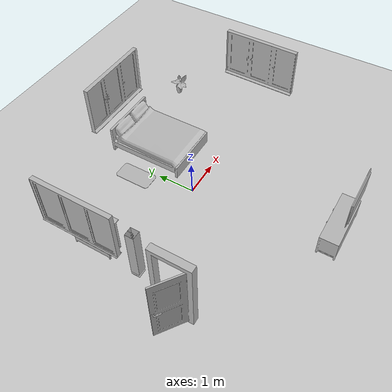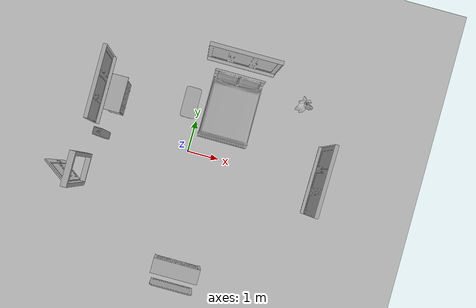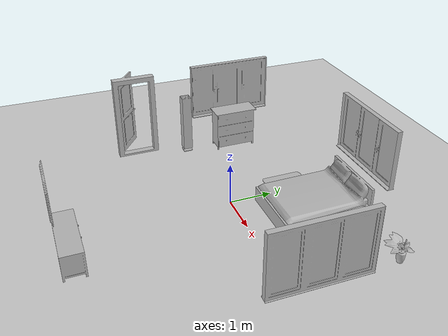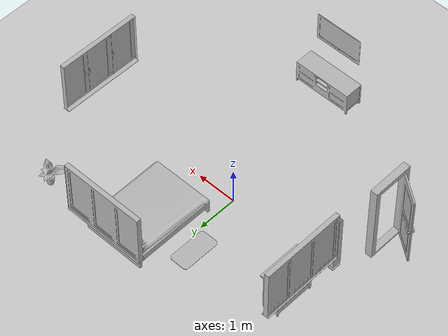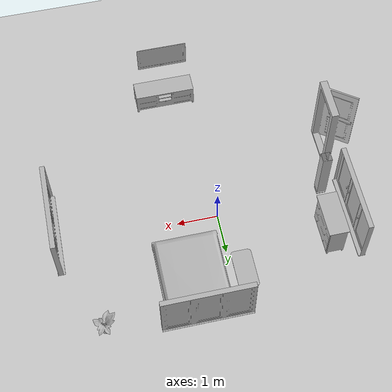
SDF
<sdf version="1.4">
 <world name="default">
  <light name="sun" type="directional">
   <pose>0 0 10 0 -0 0</pose>
   <diffuse>0.8 0.8 0.8 1</diffuse>
   <specular>0.2 0.2 0.2 1</specular>
   <attenuation>
    <range>1000</range>
    <constant>0.9</constant>
    <linear>0.01</linear>
    <quadratic>0.001</quadratic>
   </attenuation>
   <direction>-0.5 0.1 -0.9</direction>
  </light>
  <model name="ground_plane">
   <static>1</static>
   <link name="link">
    <collision name="collision">
     <geometry><plane><normal>0 0 1</normal><size>100 100</size></plane></geometry>
     <surface><friction><ode><mu>100</mu><mu2>50</mu2></ode></friction></surface>
    </collision>
    <visual name="visual">
     <cast_shadows>0</cast_shadows>
     <geometry><plane><normal>0 0 1</normal><size>100 100</size></plane></geometry>
     <material>
      <script><uri>file://media/materials/scripts/gazebo.material</uri><name>Gazebo/Grey</name></script>
     </material>
    </visual>
    <velocity_decay><linear>0</linear><angular>0</angular></velocity_decay>
   </link>
  </model>
  <physics type="ode">
   <max_step_size>0.001</max_step_size>
   <real_time_factor>1</real_time_factor>
   <real_time_update_rate>1000</real_time_update_rate>
   <gravity>0 0 -9.8</gravity>
  </physics>
  <scene><ambient>0.4 0.4 0.4 1</ambient><background>0.7 0.7 0.7 1</background><shadows>1</shadows></scene>
  <spherical_coordinates>
   <surface_model>EARTH_WGS84</surface_model>
   <latitude_deg>0</latitude_deg>
   <longitude_deg>0</longitude_deg>
   <elevation>0</elevation>
   <heading_deg>0</heading_deg>
  </spherical_coordinates>
  <model name="214_0">
   <pose>-3.04947 -1.42674 0 0 -0 0.001853</pose>
   <static>1</static>
   <link name="link">
    <collision name="collision"><geometry><box><size>0.829998 1.03985 2</size></box></geometry></collision>
    <visual name="visual"><geometry><mesh><uri>model://214/214.dae</uri></mesh></geometry></visual>
    <velocity_decay><linear>0</linear><angular>0</angular></velocity_decay>
   </link>
  </model>
  <model name="210_0">
   <pose>-2.93542 1.10342 0.83 0 -0 0.001853</pose>
   <static>1</static>
   <link name="link">
    <collision name="collision"><geometry><box><size>0.175 2.1 2</size></box></geometry></collision>
    <visual name="visual"><geometry><mesh><uri>model://210/210.dae</uri></mesh></geometry></visual>
    <velocity_decay><linear>0</linear><angular>0</angular></velocity_decay>
   </link>
  </model>
  <model name="210_1">
   <pose>0.874067 2.91995 0.83 0 0 -1.57078</pose>
   <static>1</static>
   <link name="link">
    <collision name="collision"><geometry><box><size>0.175 2.1 2</size></box></geometry></collision>
    <visual name="visual"><geometry><mesh><uri>model://210/210.dae</uri></mesh></geometry></visual>
    <velocity_decay><linear>0</linear><angular>0</angular></velocity_decay>
   </link>
  </model>
  <model name="210_2">
   <pose>3.90666 0.103814 0.83 0 -0 3.1273</pose>
   <static>1</static>
   <link name="link">
    <collision name="collision"><geometry><box><size>0.175 2.1 2</size></box></geometry></collision>
    <visual name="visual"><geometry><mesh><uri>model://210/210.dae</uri></mesh></geometry></visual>
    <velocity_decay><linear>0</linear><angular>0</angular></velocity_decay>
   </link>
  </model>
  <model name="75_0">
   <pose>0.948529 1.60347 0.03 0 0 -1.5708</pose>
   <static>1</static>
   <link name="link">
    <collision name="collision"><geometry><box><size>2.1 1.61002 2</size></box></geometry></collision>
    <visual name="visual"><geometry><mesh><uri>model://75/75.dae</uri></mesh></geometry></visual>
    <velocity_decay><linear>0</linear><angular>0</angular></velocity_decay>
   </link>
  </model>
  <model name="451_0">
   <pose>0.601259 -3.70862 0.03 0 -0 1.5708</pose>
   <static>1</static>
   <link name="link">
    <collision name="collision"><geometry><box><size>0.5 1.5 2</size></box></geometry></collision>
    <visual name="visual"><geometry><mesh><uri>model://451/451.dae</uri></mesh></geometry></visual>
    <velocity_decay><linear>0</linear><angular>0</angular></velocity_decay>
   </link>
  </model>
  <model name="140_0">
   <pose>-2.53155 1.066 0.03 0 -0 0</pose>
   <static>1</static>
   <link name="link">
    <collision name="collision"><geometry><box><size>0.500507 1.1 2</size></box></geometry></collision>
    <visual name="visual"><geometry><mesh><uri>model://140/140.dae</uri></mesh></geometry></visual>
    <velocity_decay><linear>0</linear><angular>0</angular></velocity_decay>
   </link>
  </model>
  <model name="228_0">
   <pose>0.567439 -3.95383 1.22286 0 -0 1.5708</pose>
   <static>1</static>
   <link name="link">
    <collision name="collision"><geometry><box><size>0.05 1.24002 2</size></box></geometry></collision>
    <visual name="visual"><geometry><mesh><uri>model://228/228.dae</uri></mesh></geometry></visual>
    <velocity_decay><linear>0</linear><angular>0</angular></velocity_decay>
   </link>
  </model>
  <model name="130_0">
   <pose>3.17454 2.38073 0.03 0 -0 0</pose>
   <static>1</static>
   <link name="link">
    <collision name="collision"><geometry><box><size>0.51716 0.566834 2</size></box></geometry></collision>
    <visual name="visual"><geometry><mesh><uri>model://130/130.dae</uri></mesh></geometry></visual>
    <velocity_decay><linear>0</linear><angular>0</angular></velocity_decay>
   </link>
  </model>
  <model name="235_0">
   <pose>-0.327424 1.54296 0.03 0 -0 0</pose>
   <static>1</static>
   <link name="link">
    <collision name="collision"><geometry><box><size>0.5 1 0</size></box></geometry></collision>
    <visual name="visual"><geometry><mesh><uri>model://235/235.dae</uri></mesh></geometry></visual>
    <velocity_decay><linear>0</linear><angular>0</angular></velocity_decay>
   </link>
  </model>
  <model name="517_0">
   <pose>-2.67999 -0.192504 0.03 0 -0 0</pose>
   <static>1</static>
   <link name="link">
    <collision name="collision"><geometry><box><size>0.23 0.23 2</size></box></geometry></collision>
    <visual name="visual"><geometry><mesh><uri>model://517/517.dae</uri></mesh></geometry></visual>
    <velocity_decay><linear>0</linear><angular>0</angular></velocity_decay>
   </link>
  </model>
 </world>
</sdf>
